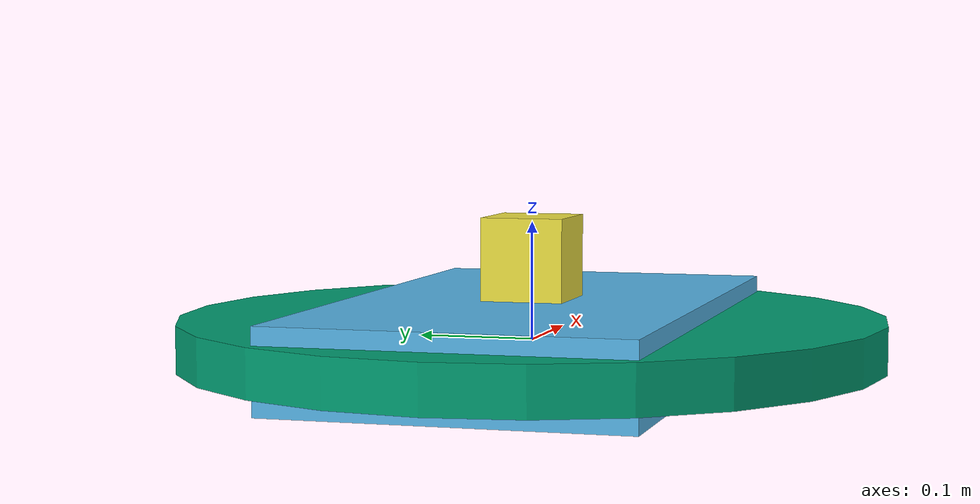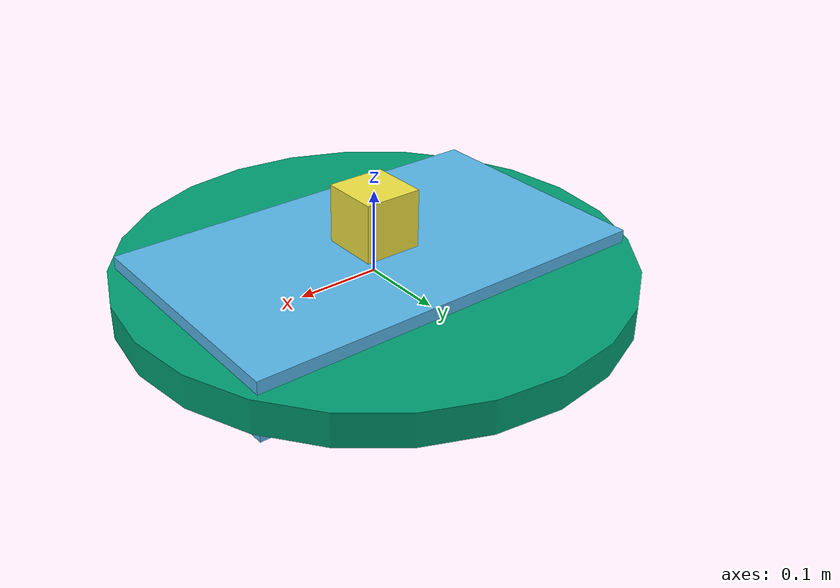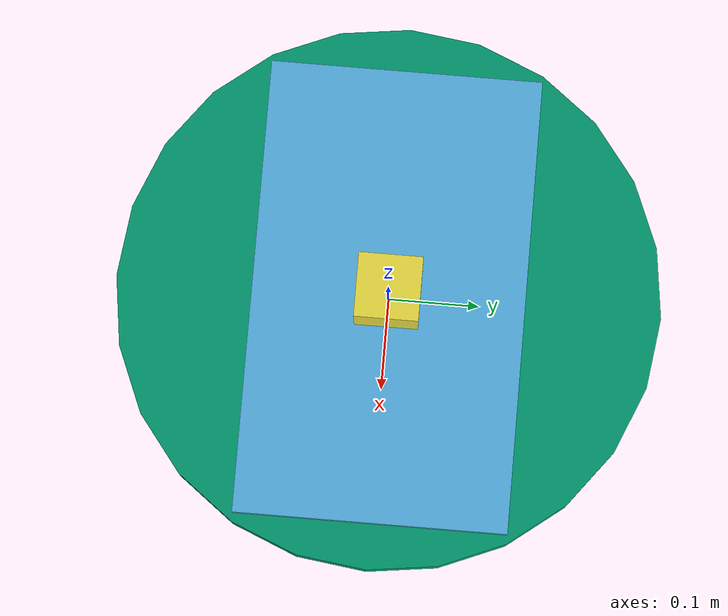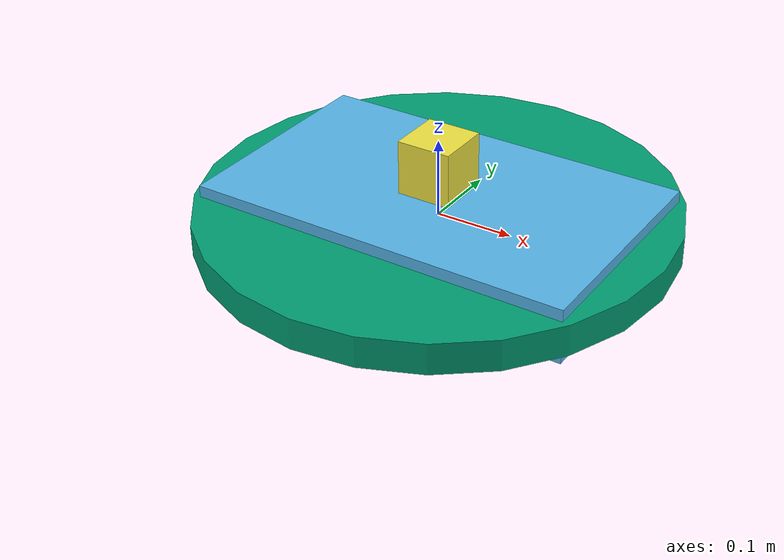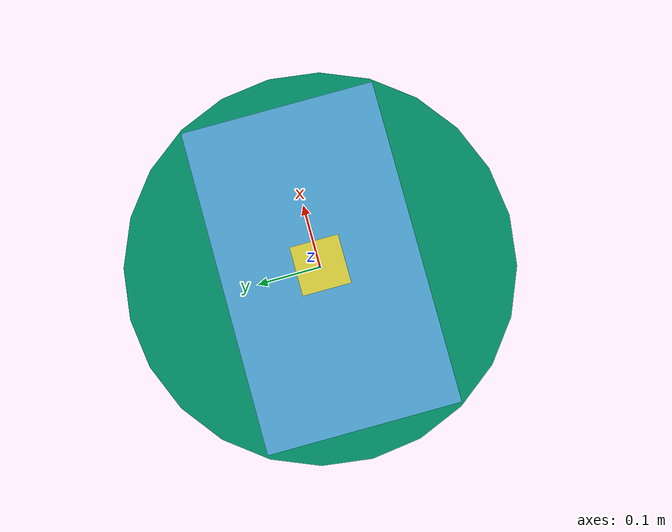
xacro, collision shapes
<robot name="simple4wheeler" xmlns:xacro="http://www.ros.org/wiki/xacro">
    <xacro:property name="pi_" value="3.142" />

    <link name="map">
    </link>

    <link name="link_chassis">
        <!-- pose x, y, z, roll, pitch, yaw-->
        <pose> 0 0 0.1 0 0 0</pose>
        <inertial>
            <mass value="3"/>
            <origin xyz="0.0 0.0 0.1" rpy="0.0 0.0 0.0"/>
            <inertia ixx="0.03954"
                    ixy="0"
                    ixz="0"
                    iyy="0.10620"
                    iyz="0"
                    izz="0.10620" />
        </inertial>
        <collision name="collision_chassis">
            <geometry>
                <box size="0.5 0.3 0.07"/>
            </geometry>
        </collision>
        <visual>
            <geometry>
                <box size="0.5 0.3 0.07"/>
            </geometry>
        </visual>
    </link>

    <joint name="joint_map" type="fixed">
        <parent link="map"/>
        <child link="link_chassis"/>
    </joint>

    <link name="link_right_back_wheel">
        <inertial>
            <mass value="0.2"/>
            <origin rpy="0 0 0" xyz="0 0 0.1"/>
                <inertia ixx="0.00052"
                         ixy="0"
                         ixz="0"
                         iyy="0.00052"
                         iyz="0"
                         izz="0.001" />
        </inertial>
        <collision name="collision_right_back_wheel">
            <geometry>
                <cylinder length="0.04" radius="0.3"/>
            </geometry>
        </collision>
        <visual name="visual_right_back_wheel">
            <geometry>
                <cylinder length="0.04" radius="0.3"/>
            </geometry>
        </visual>
    </link>
    <joint name="joint_right_back_wheel" type="continuous">
        <origin rpy="0 0 0" xyz="0 0 0" />
        <parent link="link_chassis" />
        <child link="link_right_back_wheel" />
        <axis rpy="0 0 0" xyz="0 0 1" />
        <limit effort="10" velocity="10" />
        <joint_properties damping="1.0" friction="1.0" />
    </joint>

    <link name="link_lidar">
        <inertial>
            <mass value="0.1"/>
            <origin rpy="0 0 0" xyz="0 0 0"/>
                <inertia ixx="0.00001"
                         ixy="0"
                         ixz="0"
                         iyy="0.00001"
                         iyz="0"
                         izz="0.00001" />
        </inertial>
        <collision name="collision_lidar">
            <geometry>
                <box size="0.07 0.07 0.07" />
            </geometry>
        </collision>
        <visual name="visual_lidar">
            <geometry>
                <mesh filename="file://package://simple4wheeler/model/rplidar_a2_simple.stl" />
            </geometry>
        </visual>
    </link>
    <joint name="joint_lidar" type="fixed">
        <origin rpy="0 0 0" xyz="0 0 0.07" />
        <parent link="link_chassis" />
        <child link="link_lidar" />
    </joint>

    <gazebo reference="link_lidar">
        <sensor type="ray" name="sensor_lidar">
            <update_rate>10</update_rate>
            <visualize>true</visualize>
            <ray>
                <scan>
                    <horizontal>
                        <samples>400</samples>
                        <min_angle>-${pi_}</min_angle>
                        <max_angle>${pi_}</max_angle>
                    </horizontal>
                    <vertical>
                        <samples>1</samples>
                        <min_angle>-0.05</min_angle>
                        <max_angle>0.05</max_angle>
                    </vertical>
                </scan>
                    <range>
                        <min>0.015</min>
                        <max>12</max>
                        <resolution>0.01</resolution>
                    </range>
            </ray>
            <plugin name="gazebo_ros_lidar" filename="libgazebo_ros_laser.so">
                <gaussianNoise>0.01</gaussianNoise>
                <updateRate>10</updateRate>
                <topicName>lidar</topicName>
                <minRange>0.15</minRange>
                <maxRange>12.0</maxRange>
                <frameName>link_lidar</frameName>
            </plugin>
        </sensor>
</gazebo>
</robot>
